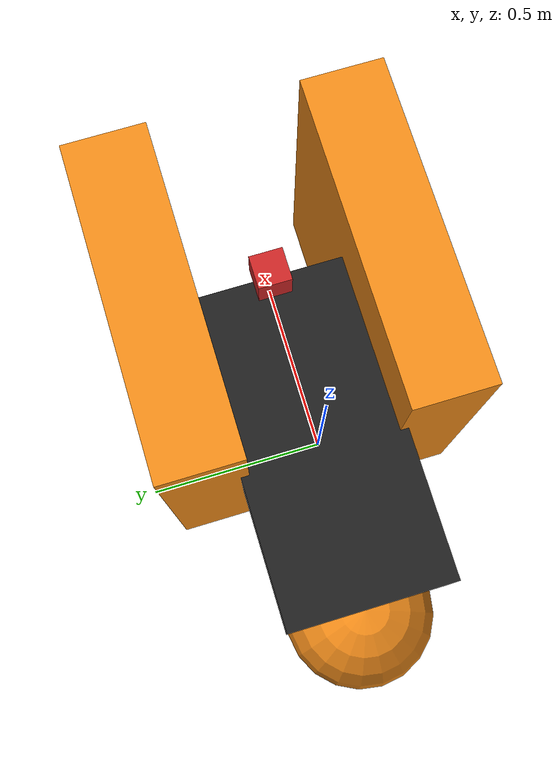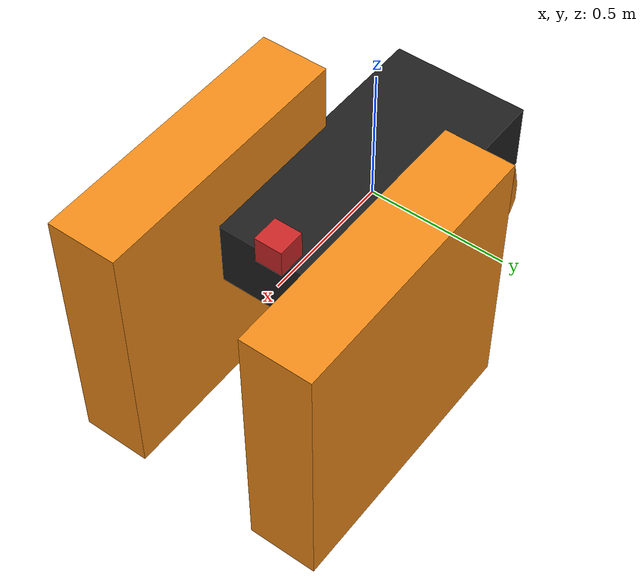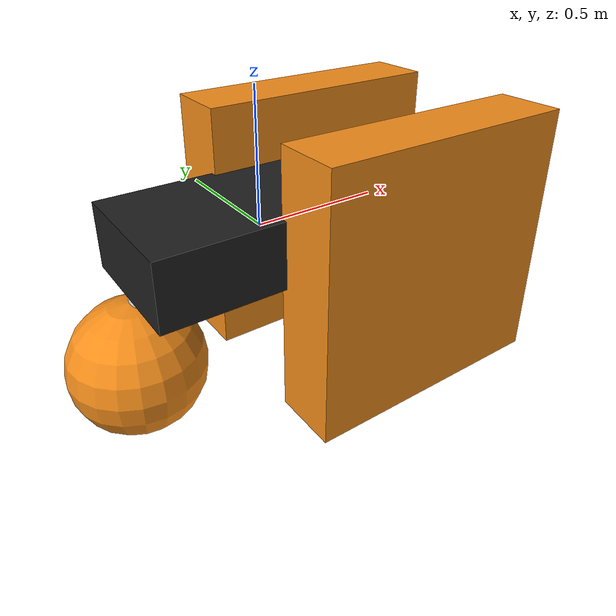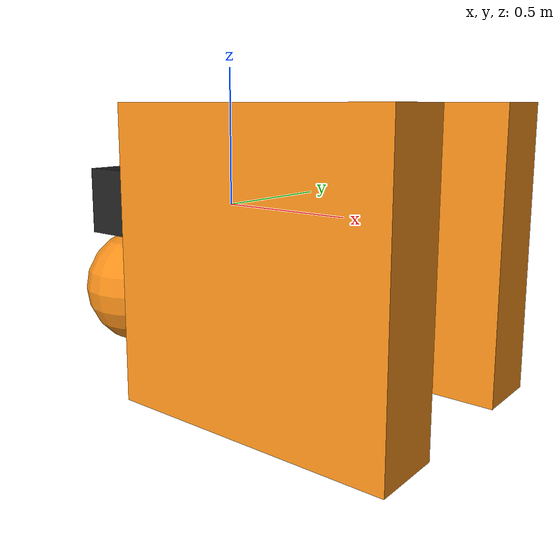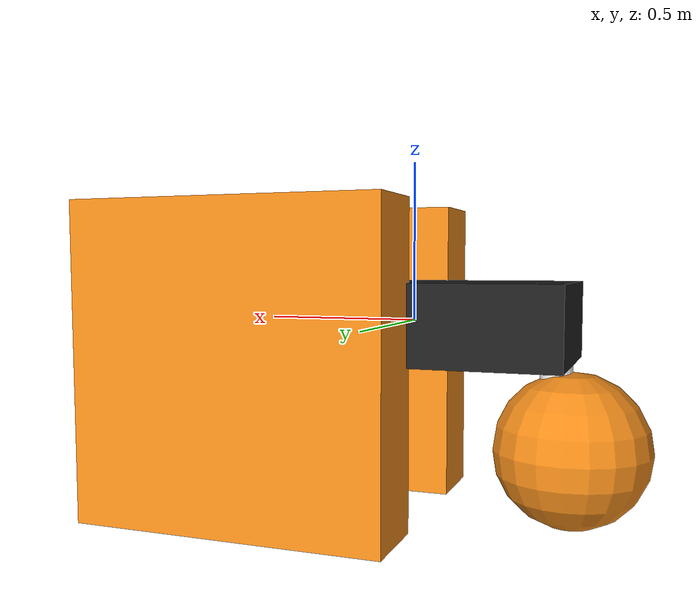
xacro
<?xml version="1.0"?>
<robot name="drivebot">

<link name="base_footprint" />

  <link name="chassis">
    <visual>
      <geometry>
        <box size="1 0.5 0.25"/>
      </geometry>
      <origin rpy="0 0 0" xyz="0 0 0"/>
    </visual>
    <collision>
      <geometry>
        <box size="1 0.5 0.25"/>
      </geometry>
      <origin rpy="0 0 0" xyz="0 0 0"/>
    </collision>
    <inertial>
      <mass value="2"/>
      <inertia ixx="0.0104" ixy="0.0" ixz="0.0" iyy="0.04166" iyz="0.0" izz="0.05208"/>
      <origin rpy="0 0 0" xyz="0 0 0"/>
    </inertial>
  </link>

  <link name="right_wheel">
    <visual>
      <geometry>
        <box size="1 1 0.25"/>
      </geometry>
      <origin rpy="1.57075 0 0" xyz="0 -0.1 0"/>
    </visual>
    <collision>
      <geometry>
        <box size="1 1 0.25"/>
      </geometry>
      <origin rpy="1.57075 0 0" xyz="0 -0.1 0"/>
    </collision>
    <inertial>
      <mass value="0.25"/>
      <inertia ixx="0.047375" ixy="0.0" ixz="0.0" iyy="0.011844" iyz="0.0" izz="0.0078125"/> <!-- These inertia values are for a cylinder with radius 0.5 and length 0.2 -->
      <origin rpy="1.57075 0 0" xyz="0 -0.1 0"/>
    </inertial>
  </link>

  <link name="left_wheel">
    <visual>
      <geometry>
        <box size="1 1 0.25"/>
      </geometry>
      <origin rpy="1.57075 0 0" xyz="0 0.1 0"/>
    </visual>
    <collision>
      <geometry>
        <box size="1 1 0.25"/>
      </geometry>
      <origin rpy="1.57075 0 0" xyz="0 0.1 0"/>
    </collision>
    <inertial>
      <mass value="0.25"/>
      <inertia ixx="0.047375" ixy="0.0" ixz="0.0" iyy="0.011844" iyz="0.0" izz="0.0078125"/> <!-- These inertia values are for a cylinder with radius 0.5 and length 0.2 -->
      <origin rpy="1.57075 0 0" xyz="0 0.1 0"/>
    </inertial>
  </link>

  <link name="rear_wheel_support">
    <visual>
      <geometry>
        <cylinder length="0.26" radius="0.05"/>
      </geometry>
      <origin rpy="0 0 0" xyz="0 0 -0.13"/>
    </visual>
    <collision>
      <geometry>
        <cylinder length="0.26" radius="0.05"/>
      </geometry>
      <origin rpy="0 0 0" xyz="0 0 -0.13"/>
    </collision>
    <inertial>
      <mass value="0.01"/>
      <inertia ixx="0.00003958" ixy="0.0" ixz="0.0" iyy="0.00003958" iyz="0.0" izz="0.0000125"/>
      <origin rpy="0 0 0" xyz="0 0 -0.13"/>
    </inertial>
  </link>

  <link name="rear_wheel">
    <visual>
      <geometry>
        <sphere radius="0.24"/>
      </geometry>
      <origin rpy="0 0 0" xyz="0 0 0"/>
    </visual>
    <collision>
      <geometry>
        <sphere radius="0.20"/>
      </geometry>
      <origin rpy="0 0 0" xyz="0 0 0"/>
    </collision>
    <inertial>
      <mass value="0.30"/>
      <inertia ixx="0.005" ixy="0.0" ixz="0.0" iyy="0.005" iyz="0.0" izz="0.005"/>
      <origin rpy="0 0 0" xyz="0 0 0"/>
    </inertial>
  </link>

  <link name="camera_link">
    <visual>
      <geometry>
        <box size="0.1016 0.1016 0.1016"/>
      </geometry>
      <origin rpy="0 0 0" xyz="0 0 0.0508"/>
    </visual>
    <collision>
      <geometry>
        <box size="0.1016 0.1016 0.1016"/>
      </geometry>
      <origin rpy="0 0 0" xyz="0 0 0.0508"/>
    </collision>
    <inertial>
      <mass value="0.113398093"/>
      <inertia ixx="0.0001950931" ixy="0.0" ixz="0.0" iyy="0.0001950931" iyz="0.0" izz="0.0001950931"/>
      <origin rpy="0 0 0" xyz="0 0 0.0508"/>
    </inertial>
  </link>

  <joint name="chassis_to_right_wheel" type="continuous">
    <parent link="chassis"/>
    <child link="left_wheel"/>
    <origin rpy="0 0 0" xyz="0.45 0.25 -0.125"/>
    <axis xyz="0 1 0"/>
    <limit effort="100" velocity="100"/>
    <dynamics damping="0.0001"/>
  </joint>

  <joint name="chassis_to_left_wheel" type="continuous">
    <parent link="chassis"/>
    <child link="right_wheel"/>
    <origin rpy="0 0 0" xyz="0.45 -0.25 -0.125"/>
    <axis xyz="0 1 0"/>
    <limit effort="100" velocity="100"/>
    <dynamics damping="0.0001"/>
  </joint>

  <joint name="chassis_to_rear_wheel_support" type="continuous">
    <parent link="chassis"/>
    <child link="rear_wheel_support"/>
    <origin rpy="0 0 0" xyz="-0.45 0 -0.125"/>
    <axis xyz="0 0 1"/>
    <limit effort="100" velocity="100"/>
    <dynamics damping="0.0001"/>
  </joint>

  <joint name="rear_wheel_support_to_rear_wheel" type="continuous">
    <parent link="rear_wheel_support"/>
    <child link="rear_wheel"/>
    <origin rpy="0 0 0" xyz="-0.05 0 -0.26"/>
    <axis xyz="0 1 0"/>
    <limit effort="100" velocity="100"/>
    <dynamics damping="0.01"/>
  </joint>

  <joint name="chassis_to_camera_link" type="fixed">
    <parent link="chassis"/>
    <child link="camera_link"/>
    <origin rpy="0 0 0" xyz="0.49 0 0.125"/>
  </joint>

  <joint name="base_footprint_to_base_link" type="fixed">
    <parent link="base_footprint" />
    <child link="chassis" />
    <origin rpy="0 0 0" xyz="0 0 0" />
  </joint>

  <gazebo reference="chassis">
    <material>Gazebo/Black</material>
  </gazebo>

  <gazebo reference="right_wheel">
    <mu1>1.0</mu1>
    <mu2>1.0</mu2>
    <kp>10000000.0</kp>
    <kd>1.0</kd>
    <material>Gazebo/Orange</material>
  </gazebo>

  <gazebo reference="left_wheel">
    <mu1>1.0</mu1>
    <mu2>1.0</mu2>
    <kp>10000000.0</kp>
    <kd>1.0</kd>
    <material>Gazebo/Orange</material>
  </gazebo>

  <gazebo reference="rear_wheel_support">
    <material>Gazebo/White</material>
  </gazebo>

  <gazebo reference="rear_wheel">
    <mu1>1.0</mu1>
    <mu2>1.0</mu2>
    <kp>10000000.0</kp>
    <kd>1.0</kd>
    <material>Gazebo/Orange</material>
  </gazebo>

  <gazebo reference="camera_link">
    <material>Gazebo/Red</material>
    <sensor type="camera" name="camera1">
      <update_rate>30.0</update_rate>
      <camera name="head">
        <horizontal_fov>1.3962634</horizontal_fov>
        <image>
          <width>800</width>
          <height>800</height>
          <format>R8G8B8</format>
        </image>
        <clip>
          <near>0.02</near>
          <far>300</far>
        </clip>
        <noise>
          <type>gaussian</type>
          <!-- Noise is sampled independently per pixel on each frame.
               That pixel's noise value is added to each of its color
               channels, which at that point lie in the range [0,1]. -->
          <mean>0.0</mean>
          <stddev>0.007</stddev>
        </noise>
      </camera>
      <plugin name="camera_controller" filename="libgazebo_ros_camera.so">
        <alwaysOn>true</alwaysOn>
        <updateRate>0.0</updateRate>
        <cameraName>drivebot/camera1</cameraName>
        <imageTopicName>image_raw</imageTopicName>
        <cameraInfoTopicName>camera_info</cameraInfoTopicName>
        <frameName>camera_link</frameName>
        <hackBaseline>0.07</hackBaseline>
        <distortionK1>0.0</distortionK1>
        <distortionK2>0.0</distortionK2>
        <distortionK3>0.0</distortionK3>
        <distortionT1>0.0</distortionT1>
        <distortionT2>0.0</distortionT2>
      </plugin>
    </sensor>
  </gazebo>

  <gazebo>
    <plugin name="front_wheel_differential_drive_controller" filename="libgazebo_ros_diff_drive.so">
      <legacyMode>true</legacyMode>
      <alwaysOn>true</alwaysOn>
      <updateRate>100</updateRate>
      <leftJoint>chassis_to_left_wheel</leftJoint>
      <rightJoint>chassis_to_right_wheel</rightJoint>
      <wheelSeparation>0.5</wheelSeparation>
      <wheelDiameter>0.25</wheelDiameter>
      <torque>20</torque>
      <commandTopic>cmd_vel</commandTopic>
      <odometryTopic>odom</odometryTopic>
      <odometryFrame>odom</odometryFrame>
      <robotBaseFrame>chassis</robotBaseFrame>
    </plugin>
  </gazebo>

</robot>
